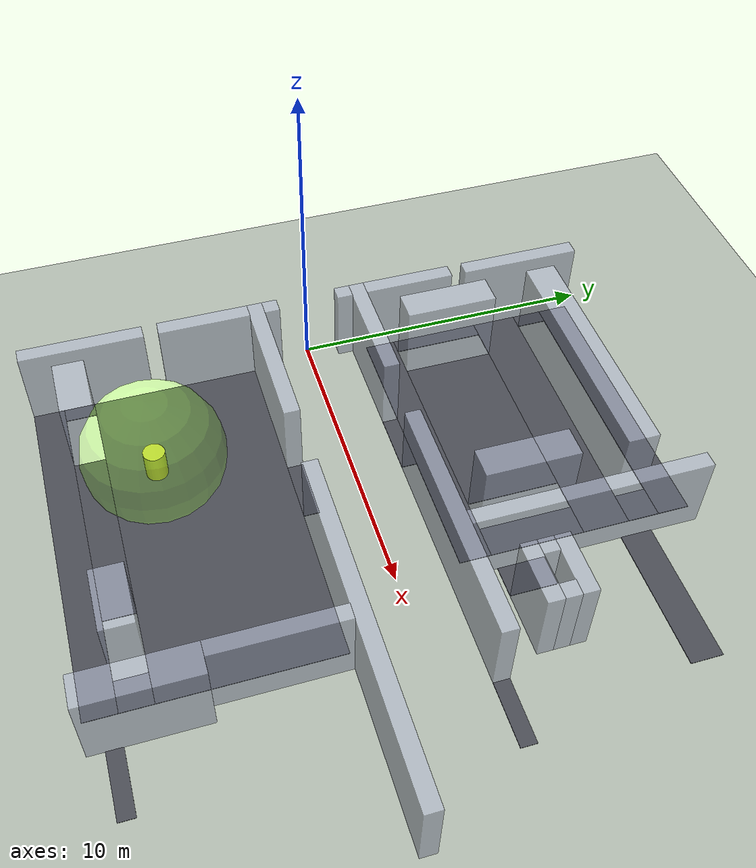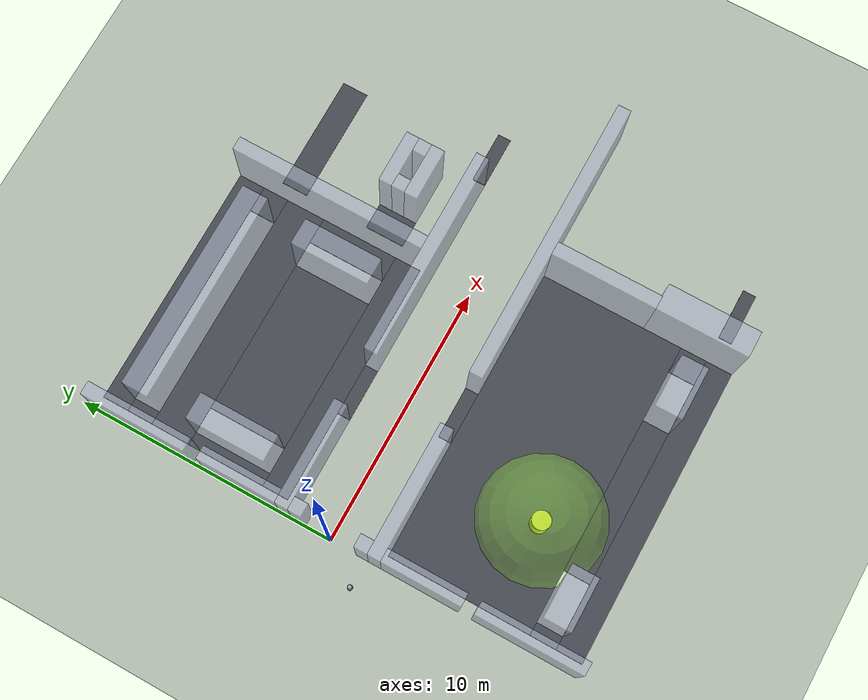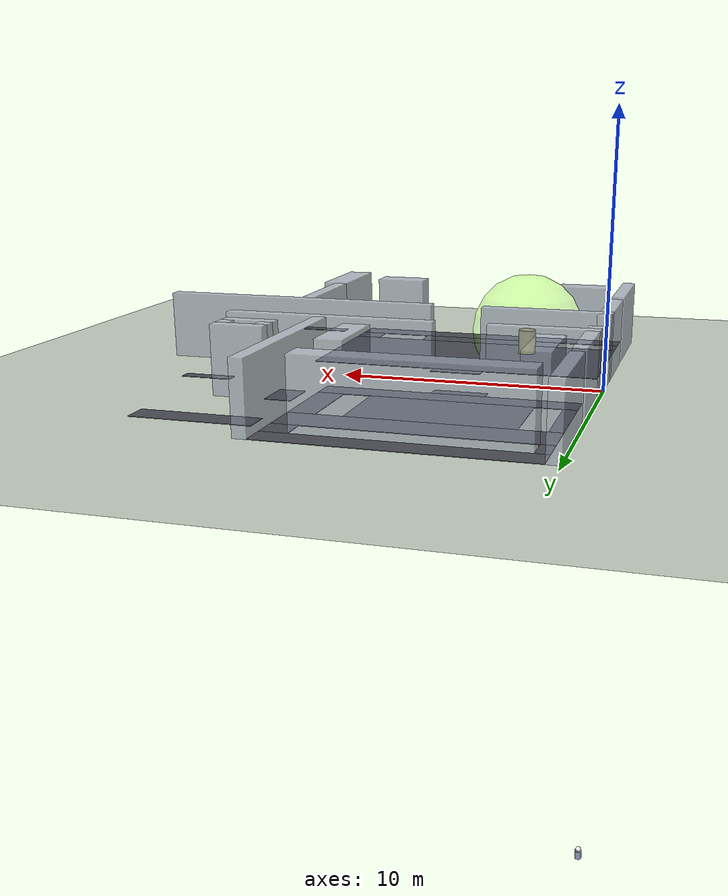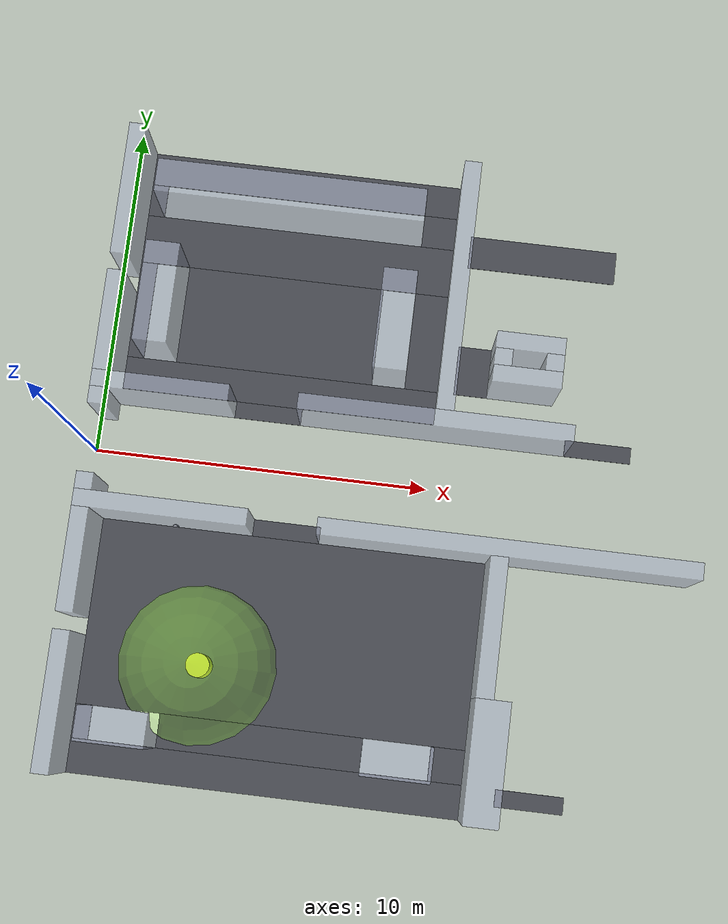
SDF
<sdf version="1.9">
 <world name="living_map_fire">
  <model name="ground">
   <static>true</static>
   <link name="l">
    <collision name="c"><geometry><plane><normal>0 0 1</normal><size>120 80</size></plane></geometry></collision>
    <visual name="v">
     <geometry><plane><normal>0 0 1</normal><size>120 80</size></plane></geometry>
     <material><ambient>0.16 0.17 0.2 1.0</ambient><diffuse>0.16 0.17 0.2 1.0</diffuse></material>
    </visual>
   </link>
  </model>
  <model name="slab0_0">
   <static>true</static>
   <pose>6.250 -9.000 0.010 0 0 0</pose>
   <link name="l">
    <collision name="c"><geometry><box><size>11.500 1.000 0.020</size></box></geometry></collision>
    <visual name="v">
     <geometry><box><size>11.500 1.000 0.020</size></box></geometry>
     <material><ambient>0.28 0.29 0.32 1.0</ambient><diffuse>0.28 0.29 0.32 1.0</diffuse></material>
    </visual>
   </link>
  </model>
  <model name="slab0_4">
   <static>true</static>
   <pose>14.000 -8.750 0.010 0 0 0</pose>
   <link name="l">
    <collision name="c"><geometry><box><size>2.000 0.500 0.020</size></box></geometry></collision>
    <visual name="v">
     <geometry><box><size>2.000 0.500 0.020</size></box></geometry>
     <material><ambient>0.28 0.29 0.32 1.0</ambient><diffuse>0.28 0.29 0.32 1.0</diffuse></material>
    </visual>
   </link>
  </model>
  <model name="slab0_9">
   <static>true</static>
   <pose>0.750 -8.000 0.010 0 0 0</pose>
   <link name="l">
    <collision name="c"><geometry><box><size>0.500 1.000 0.020</size></box></geometry></collision>
    <visual name="v">
     <geometry><box><size>0.500 1.000 0.020</size></box></geometry>
     <material><ambient>0.28 0.29 0.32 1.0</ambient><diffuse>0.28 0.29 0.32 1.0</diffuse></material>
    </visual>
   </link>
  </model>
  <model name="slab0_10">
   <static>true</static>
   <pose>6.000 -8.000 0.010 0 0 0</pose>
   <link name="l">
    <collision name="c"><geometry><box><size>6.000 1.000 0.020</size></box></geometry></collision>
    <visual name="v">
     <geometry><box><size>6.000 1.000 0.020</size></box></geometry>
     <material><ambient>0.28 0.29 0.32 1.0</ambient><diffuse>0.28 0.29 0.32 1.0</diffuse></material>
    </visual>
   </link>
  </model>
  <model name="slab0_11">
   <static>true</static>
   <pose>11.500 -8.000 0.010 0 0 0</pose>
   <link name="l">
    <collision name="c"><geometry><box><size>1.000 1.000 0.020</size></box></geometry></collision>
    <visual name="v">
     <geometry><box><size>1.000 1.000 0.020</size></box></geometry>
     <material><ambient>0.28 0.29 0.32 1.0</ambient><diffuse>0.28 0.29 0.32 1.0</diffuse></material>
    </visual>
   </link>
  </model>
  <model name="slab0_13">
   <static>true</static>
   <pose>6.250 -4.750 0.010 0 0 0</pose>
   <link name="l">
    <collision name="c"><geometry><box><size>11.500 5.500 0.020</size></box></geometry></collision>
    <visual name="v">
     <geometry><box><size>11.500 5.500 0.020</size></box></geometry>
     <material><ambient>0.28 0.29 0.32 1.0</ambient><diffuse>0.28 0.29 0.32 1.0</diffuse></material>
    </visual>
   </link>
  </model>
  <model name="slab0_16">
   <static>true</static>
   <pose>6.000 -1.750 0.010 0 0 0</pose>
   <link name="l">
    <collision name="c"><geometry><box><size>2.000 0.500 0.020</size></box></geometry></collision>
    <visual name="v">
     <geometry><box><size>2.000 0.500 0.020</size></box></geometry>
     <material><ambient>0.28 0.29 0.32 1.0</ambient><diffuse>0.28 0.29 0.32 1.0</diffuse></material>
    </visual>
   </link>
  </model>
  <model name="slab0_24">
   <static>true</static>
   <pose>5.000 1.750 0.010 0 0 0</pose>
   <link name="l">
    <collision name="c"><geometry><box><size>2.000 0.500 0.020</size></box></geometry></collision>
    <visual name="v">
     <geometry><box><size>2.000 0.500 0.020</size></box></geometry>
     <material><ambient>0.28 0.29 0.32 1.0</ambient><diffuse>0.28 0.29 0.32 1.0</diffuse></material>
    </visual>
   </link>
  </model>
  <model name="slab0_25">
   <static>true</static>
   <pose>15.000 1.750 0.010 0 0 0</pose>
   <link name="l">
    <collision name="c"><geometry><box><size>2.000 0.500 0.020</size></box></geometry></collision>
    <visual name="v">
     <geometry><box><size>2.000 0.500 0.020</size></box></geometry>
     <material><ambient>0.28 0.29 0.32 1.0</ambient><diffuse>0.28 0.29 0.32 1.0</diffuse></material>
    </visual>
   </link>
  </model>
  <model name="slab0_28">
   <static>true</static>
   <pose>5.250 2.500 0.010 0 0 0</pose>
   <link name="l">
    <collision name="c"><geometry><box><size>9.500 1.000 0.020</size></box></geometry></collision>
    <visual name="v">
     <geometry><box><size>9.500 1.000 0.020</size></box></geometry>
     <material><ambient>0.28 0.29 0.32 1.0</ambient><diffuse>0.28 0.29 0.32 1.0</diffuse></material>
    </visual>
   </link>
  </model>
  <model name="slab0_32">
   <static>true</static>
   <pose>0.750 4.500 0.010 0 0 0</pose>
   <link name="l">
    <collision name="c"><geometry><box><size>0.500 3.000 0.020</size></box></geometry></collision>
    <visual name="v">
     <geometry><box><size>0.500 3.000 0.020</size></box></geometry>
     <material><ambient>0.28 0.29 0.32 1.0</ambient><diffuse>0.28 0.29 0.32 1.0</diffuse></material>
    </visual>
   </link>
  </model>
  <model name="slab0_33">
   <static>true</static>
   <pose>5.000 4.500 0.010 0 0 0</pose>
   <link name="l">
    <collision name="c"><geometry><box><size>6.000 3.000 0.020</size></box></geometry></collision>
    <visual name="v">
     <geometry><box><size>6.000 3.000 0.020</size></box></geometry>
     <material><ambient>0.28 0.29 0.32 1.0</ambient><diffuse>0.28 0.29 0.32 1.0</diffuse></material>
    </visual>
   </link>
  </model>
  <model name="slab0_34">
   <static>true</static>
   <pose>9.500 4.500 0.010 0 0 0</pose>
   <link name="l">
    <collision name="c"><geometry><box><size>1.000 3.000 0.020</size></box></geometry></collision>
    <visual name="v">
     <geometry><box><size>1.000 3.000 0.020</size></box></geometry>
     <material><ambient>0.28 0.29 0.32 1.0</ambient><diffuse>0.28 0.29 0.32 1.0</diffuse></material>
    </visual>
   </link>
  </model>
  <model name="slab0_35">
   <static>true</static>
   <pose>11.000 3.750 0.010 0 0 0</pose>
   <link name="l">
    <collision name="c"><geometry><box><size>1.000 1.500 0.020</size></box></geometry></collision>
    <visual name="v">
     <geometry><box><size>1.000 1.500 0.020</size></box></geometry>
     <material><ambient>0.28 0.29 0.32 1.0</ambient><diffuse>0.28 0.29 0.32 1.0</diffuse></material>
    </visual>
   </link>
  </model>
  <model name="slab0_47">
   <static>true</static>
   <pose>5.250 6.750 0.010 0 0 0</pose>
   <link name="l">
    <collision name="c"><geometry><box><size>9.500 1.500 0.020</size></box></geometry></collision>
    <visual name="v">
     <geometry><box><size>9.500 1.500 0.020</size></box></geometry>
     <material><ambient>0.28 0.29 0.32 1.0</ambient><diffuse>0.28 0.29 0.32 1.0</diffuse></material>
    </visual>
   </link>
  </model>
  <model name="slab0_48">
   <static>true</static>
   <pose>12.750 7.500 0.010 0 0 0</pose>
   <link name="l">
    <collision name="c"><geometry><box><size>4.500 1.000 0.020</size></box></geometry></collision>
    <visual name="v">
     <geometry><box><size>4.500 1.000 0.020</size></box></geometry>
     <material><ambient>0.28 0.29 0.32 1.0</ambient><diffuse>0.28 0.29 0.32 1.0</diffuse></material>
    </visual>
   </link>
  </model>
  <model name="slab0_50">
   <static>true</static>
   <pose>0.750 8.000 0.010 0 0 0</pose>
   <link name="l">
    <collision name="c"><geometry><box><size>0.500 1.000 0.020</size></box></geometry></collision>
    <visual name="v">
     <geometry><box><size>0.500 1.000 0.020</size></box></geometry>
     <material><ambient>0.28 0.29 0.32 1.0</ambient><diffuse>0.28 0.29 0.32 1.0</diffuse></material>
    </visual>
   </link>
  </model>
  <model name="slab0_51">
   <static>true</static>
   <pose>9.500 8.000 0.010 0 0 0</pose>
   <link name="l">
    <collision name="c"><geometry><box><size>1.000 1.000 0.020</size></box></geometry></collision>
    <visual name="v">
     <geometry><box><size>1.000 1.000 0.020</size></box></geometry>
     <material><ambient>0.28 0.29 0.32 1.0</ambient><diffuse>0.28 0.29 0.32 1.0</diffuse></material>
    </visual>
   </link>
  </model>
  <model name="slab0_55">
   <static>true</static>
   <pose>5.250 9.000 0.010 0 0 0</pose>
   <link name="l">
    <collision name="c"><geometry><box><size>9.500 1.000 0.020</size></box></geometry></collision>
    <visual name="v">
     <geometry><box><size>9.500 1.000 0.020</size></box></geometry>
     <material><ambient>0.28 0.29 0.32 1.0</ambient><diffuse>0.28 0.29 0.32 1.0</diffuse></material>
    </visual>
   </link>
  </model>
  <model name="wall0_1">
   <static>true</static>
   <pose>0.250 -7.500 1.300 0 0 0</pose>
   <link name="l">
    <collision name="c"><geometry><box><size>0.500 4.000 2.600</size></box></geometry></collision>
    <visual name="v">
     <geometry><box><size>0.500 4.000 2.600</size></box></geometry>
     <material><ambient>0.62 0.65 0.72 0.75</ambient><diffuse>0.62 0.65 0.72 0.75</diffuse></material>
    </visual>
   </link>
  </model>
  <model name="wall0_2">
   <static>true</static>
   <pose>12.500 -7.750 1.300 0 0 0</pose>
   <link name="l">
    <collision name="c"><geometry><box><size>1.000 3.500 2.600</size></box></geometry></collision>
    <visual name="v">
     <geometry><box><size>1.000 3.500 2.600</size></box></geometry>
     <material><ambient>0.62 0.65 0.72 0.75</ambient><diffuse>0.62 0.65 0.72 0.75</diffuse></material>
    </visual>
   </link>
  </model>
  <model name="wall0_10">
   <static>true</static>
   <pose>2.000 -8.000 1.300 0 0 0</pose>
   <link name="l">
    <collision name="c"><geometry><box><size>2.000 1.000 2.600</size></box></geometry></collision>
    <visual name="v">
     <geometry><box><size>2.000 1.000 2.600</size></box></geometry>
     <material><ambient>0.62 0.65 0.72 0.75</ambient><diffuse>0.62 0.65 0.72 0.75</diffuse></material>
    </visual>
   </link>
  </model>
  <model name="wall0_11">
   <static>true</static>
   <pose>10.000 -8.000 1.300 0 0 0</pose>
   <link name="l">
    <collision name="c"><geometry><box><size>2.000 1.000 2.600</size></box></geometry></collision>
    <visual name="v">
     <geometry><box><size>2.000 1.000 2.600</size></box></geometry>
     <material><ambient>0.62 0.65 0.72 0.75</ambient><diffuse>0.62 0.65 0.72 0.75</diffuse></material>
    </visual>
   </link>
  </model>
  <model name="wall0_12">
   <static>true</static>
   <pose>12.250 -4.000 1.300 0 0 0</pose>
   <link name="l">
    <collision name="c"><geometry><box><size>0.500 4.000 2.600</size></box></geometry></collision>
    <visual name="v">
     <geometry><box><size>0.500 4.000 2.600</size></box></geometry>
     <material><ambient>0.62 0.65 0.72 0.75</ambient><diffuse>0.62 0.65 0.72 0.75</diffuse></material>
    </visual>
   </link>
  </model>
  <model name="wall0_15">
   <static>true</static>
   <pose>0.250 -3.500 1.300 0 0 0</pose>
   <link name="l">
    <collision name="c"><geometry><box><size>0.500 3.000 2.600</size></box></geometry></collision>
    <visual name="v">
     <geometry><box><size>0.500 3.000 2.600</size></box></geometry>
     <material><ambient>0.62 0.65 0.72 0.75</ambient><diffuse>0.62 0.65 0.72 0.75</diffuse></material>
    </visual>
   </link>
  </model>
  <model name="wall0_16">
   <static>true</static>
   <pose>2.500 -1.750 1.300 0 0 0</pose>
   <link name="l">
    <collision name="c"><geometry><box><size>5.000 0.500 2.600</size></box></geometry></collision>
    <visual name="v">
     <geometry><box><size>5.000 0.500 2.600</size></box></geometry>
     <material><ambient>0.62 0.65 0.72 0.75</ambient><diffuse>0.62 0.65 0.72 0.75</diffuse></material>
    </visual>
   </link>
  </model>
  <model name="wall0_17">
   <static>true</static>
   <pose>12.500 -1.750 1.300 0 0 0</pose>
   <link name="l">
    <collision name="c"><geometry><box><size>11.000 0.500 2.600</size></box></geometry></collision>
    <visual name="v">
     <geometry><box><size>11.000 0.500 2.600</size></box></geometry>
     <material><ambient>0.62 0.65 0.72 0.75</ambient><diffuse>0.62 0.65 0.72 0.75</diffuse></material>
    </visual>
   </link>
  </model>
  <model name="wall0_21">
   <static>true</static>
   <pose>0.250 -1.250 1.300 0 0 0</pose>
   <link name="l">
    <collision name="c"><geometry><box><size>0.500 0.500 2.600</size></box></geometry></collision>
    <visual name="v">
     <geometry><box><size>0.500 0.500 2.600</size></box></geometry>
     <material><ambient>0.62 0.65 0.72 0.75</ambient><diffuse>0.62 0.65 0.72 0.75</diffuse></material>
    </visual>
   </link>
  </model>
  <model name="wall0_23">
   <static>true</static>
   <pose>0.250 1.250 1.300 0 0 0</pose>
   <link name="l">
    <collision name="c"><geometry><box><size>0.500 0.500 2.600</size></box></geometry></collision>
    <visual name="v">
     <geometry><box><size>0.500 0.500 2.600</size></box></geometry>
     <material><ambient>0.62 0.65 0.72 0.75</ambient><diffuse>0.62 0.65 0.72 0.75</diffuse></material>
    </visual>
   </link>
  </model>
  <model name="wall0_24">
   <static>true</static>
   <pose>2.000 1.750 1.300 0 0 0</pose>
   <link name="l">
    <collision name="c"><geometry><box><size>4.000 0.500 2.600</size></box></geometry></collision>
    <visual name="v">
     <geometry><box><size>4.000 0.500 2.600</size></box></geometry>
     <material><ambient>0.62 0.65 0.72 0.75</ambient><diffuse>0.62 0.65 0.72 0.75</diffuse></material>
    </visual>
   </link>
  </model>
  <model name="wall0_25">
   <static>true</static>
   <pose>10.000 1.750 1.300 0 0 0</pose>
   <link name="l">
    <collision name="c"><geometry><box><size>8.000 0.500 2.600</size></box></geometry></collision>
    <visual name="v">
     <geometry><box><size>8.000 0.500 2.600</size></box></geometry>
     <material><ambient>0.62 0.65 0.72 0.75</ambient><diffuse>0.62 0.65 0.72 0.75</diffuse></material>
    </visual>
   </link>
  </model>
  <model name="wall0_29">
   <static>true</static>
   <pose>0.250 3.500 1.300 0 0 0</pose>
   <link name="l">
    <collision name="c"><geometry><box><size>0.500 3.000 2.600</size></box></geometry></collision>
    <visual name="v">
     <geometry><box><size>0.500 3.000 2.600</size></box></geometry>
     <material><ambient>0.62 0.65 0.72 0.75</ambient><diffuse>0.62 0.65 0.72 0.75</diffuse></material>
    </visual>
   </link>
  </model>
  <model name="wall0_30">
   <static>true</static>
   <pose>10.250 5.750 1.300 0 0 0</pose>
   <link name="l">
    <collision name="c"><geometry><box><size>0.500 7.500 2.600</size></box></geometry></collision>
    <visual name="v">
     <geometry><box><size>0.500 7.500 2.600</size></box></geometry>
     <material><ambient>0.62 0.65 0.72 0.75</ambient><diffuse>0.62 0.65 0.72 0.75</diffuse></material>
    </visual>
   </link>
  </model>
  <model name="wall0_34">
   <static>true</static>
   <pose>1.500 4.500 1.300 0 0 0</pose>
   <link name="l">
    <collision name="c"><geometry><box><size>1.000 3.000 2.600</size></box></geometry></collision>
    <visual name="v">
     <geometry><box><size>1.000 3.000 2.600</size></box></geometry>
     <material><ambient>0.62 0.65 0.72 0.75</ambient><diffuse>0.62 0.65 0.72 0.75</diffuse></material>
    </visual>
   </link>
  </model>
  <model name="wall0_35">
   <static>true</static>
   <pose>8.500 4.500 1.300 0 0 0</pose>
   <link name="l">
    <collision name="c"><geometry><box><size>1.000 3.000 2.600</size></box></geometry></collision>
    <visual name="v">
     <geometry><box><size>1.000 3.000 2.600</size></box></geometry>
     <material><ambient>0.62 0.65 0.72 0.75</ambient><diffuse>0.62 0.65 0.72 0.75</diffuse></material>
    </visual>
   </link>
  </model>
  <model name="wall0_36">
   <static>true</static>
   <pose>12.500 3.250 1.300 0 0 0</pose>
   <link name="l">
    <collision name="c"><geometry><box><size>2.000 0.500 2.600</size></box></geometry></collision>
    <visual name="v">
     <geometry><box><size>2.000 0.500 2.600</size></box></geometry>
     <material><ambient>0.62 0.65 0.72 0.75</ambient><diffuse>0.62 0.65 0.72 0.75</diffuse></material>
    </visual>
   </link>
  </model>
  <model name="wall0_41">
   <static>true</static>
   <pose>11.750 3.750 1.300 0 0 0</pose>
   <link name="l">
    <collision name="c"><geometry><box><size>0.500 0.500 2.600</size></box></geometry></collision>
    <visual name="v">
     <geometry><box><size>0.500 0.500 2.600</size></box></geometry>
     <material><ambient>0.62 0.65 0.72 0.75</ambient><diffuse>0.62 0.65 0.72 0.75</diffuse></material>
    </visual>
   </link>
  </model>
  <model name="wall0_42">
   <static>true</static>
   <pose>13.250 3.750 1.300 0 0 0</pose>
   <link name="l">
    <collision name="c"><geometry><box><size>0.500 0.500 2.600</size></box></geometry></collision>
    <visual name="v">
     <geometry><box><size>0.500 0.500 2.600</size></box></geometry>
     <material><ambient>0.62 0.65 0.72 0.75</ambient><diffuse>0.62 0.65 0.72 0.75</diffuse></material>
    </visual>
   </link>
  </model>
  <model name="wall0_49">
   <static>true</static>
   <pose>12.500 4.250 1.300 0 0 0</pose>
   <link name="l">
    <collision name="c"><geometry><box><size>2.000 0.500 2.600</size></box></geometry></collision>
    <visual name="v">
     <geometry><box><size>2.000 0.500 2.600</size></box></geometry>
     <material><ambient>0.62 0.65 0.72 0.75</ambient><diffuse>0.62 0.65 0.72 0.75</diffuse></material>
    </visual>
   </link>
  </model>
  <model name="wall0_54">
   <static>true</static>
   <pose>0.250 7.500 1.300 0 0 0</pose>
   <link name="l">
    <collision name="c"><geometry><box><size>0.500 4.000 2.600</size></box></geometry></collision>
    <visual name="v">
     <geometry><box><size>0.500 4.000 2.600</size></box></geometry>
     <material><ambient>0.62 0.65 0.72 0.75</ambient><diffuse>0.62 0.65 0.72 0.75</diffuse></material>
    </visual>
   </link>
  </model>
  <model name="wall0_56">
   <static>true</static>
   <pose>5.000 8.000 1.300 0 0 0</pose>
   <link name="l">
    <collision name="c"><geometry><box><size>8.000 1.000 2.600</size></box></geometry></collision>
    <visual name="v">
     <geometry><box><size>8.000 1.000 2.600</size></box></geometry>
     <material><ambient>0.62 0.65 0.72 0.75</ambient><diffuse>0.62 0.65 0.72 0.75</diffuse></material>
    </visual>
   </link>
  </model>
  <model name="gas_tank_0">
   <static>true</static>
   <pose>4.000 -6.000 0.500 0 0 0</pose>
   <link name="l">
    <visual name="v">
     <geometry><cylinder><radius>0.35</radius><length>1.0</length></cylinder></geometry>
     <material><ambient>0.85 0.85 0.2 1.0</ambient><diffuse>0.85 0.85 0.2 1.0</diffuse></material>
    </visual>
   </link>
  </model>
  <model name="gas_cloud_0">
   <static>true</static>
   <pose>4.000 -6.000 1.000 0 0 0</pose>
   <link name="l">
    <visual name="v">
     <geometry><sphere><radius>2.3</radius></sphere></geometry>
     <material>
      <ambient>0.6 1 0.2 0.35</ambient>
      <diffuse>0.6 1 0.2 0.35</diffuse>
      <emissive>0.2 0.4 0.05 1</emissive>
     </material>
     <transparency>0.65</transparency>
    </visual>
   </link>
  </model>
  <model name="bcn_p3_5">
   <static>false</static>
   <pose>0 0 -20 0 0 0</pose>
   <link name="l">
    <gravity>false</gravity>
    <inertial><mass>1</mass><inertia><ixx>0.1</ixx><iyy>0.1</iyy><izz>0.1</izz></inertia></inertial>
    <visual name="b">
     <geometry><cylinder><radius>0.14</radius><length>0.36</length></cylinder></geometry>
     <material>
      <ambient>0.6 0.66 0.78 1.0</ambient>
      <diffuse>0.6 0.66 0.78 1.0</diffuse>
      <emissive>0.6 0.66 0.78 1</emissive>
     </material>
    </visual>
    <visual name="t">
     <pose>0 0 0.24 0 0 0</pose>
     <geometry><sphere><radius>0.11</radius></sphere></geometry>
     <material><ambient>1 1 1 1.0</ambient><diffuse>1 1 1 1.0</diffuse><emissive>1 1 1 1</emissive></material>
    </visual>
   </link>
  </model>
  <model name="bcn_p3_6">
   <static>false</static>
   <pose>0 0 -20 0 0 0</pose>
   <link name="l">
    <gravity>false</gravity>
    <inertial><mass>1</mass><inertia><ixx>0.1</ixx><iyy>0.1</iyy><izz>0.1</izz></inertia></inertial>
    <visual name="b">
     <geometry><cylinder><radius>0.14</radius><length>0.36</length></cylinder></geometry>
     <material>
      <ambient>0.6 0.66 0.78 1.0</ambient>
      <diffuse>0.6 0.66 0.78 1.0</diffuse>
      <emissive>0.6 0.66 0.78 1</emissive>
     </material>
    </visual>
    <visual name="t">
     <pose>0 0 0.24 0 0 0</pose>
     <geometry><sphere><radius>0.11</radius></sphere></geometry>
     <material><ambient>1 1 1 1.0</ambient><diffuse>1 1 1 1.0</diffuse><emissive>1 1 1 1</emissive></material>
    </visual>
   </link>
  </model>
  <model name="bcn_p3_7">
   <static>false</static>
   <pose>0 0 -20 0 0 0</pose>
   <link name="l">
    <gravity>false</gravity>
    <inertial><mass>1</mass><inertia><ixx>0.1</ixx><iyy>0.1</iyy><izz>0.1</izz></inertia></inertial>
    <visual name="b">
     <geometry><cylinder><radius>0.14</radius><length>0.36</length></cylinder></geometry>
     <material>
      <ambient>0.6 0.66 0.78 1.0</ambient>
      <diffuse>0.6 0.66 0.78 1.0</diffuse>
      <emissive>0.6 0.66 0.78 1</emissive>
     </material>
    </visual>
    <visual name="t">
     <pose>0 0 0.24 0 0 0</pose>
     <geometry><sphere><radius>0.11</radius></sphere></geometry>
     <material><ambient>1 1 1 1.0</ambient><diffuse>1 1 1 1.0</diffuse><emissive>1 1 1 1</emissive></material>
    </visual>
   </link>
  </model>
  <model name="bcn_p3_8">
   <static>false</static>
   <pose>0 0 -20 0 0 0</pose>
   <link name="l">
    <gravity>false</gravity>
    <inertial><mass>1</mass><inertia><ixx>0.1</ixx><iyy>0.1</iyy><izz>0.1</izz></inertia></inertial>
    <visual name="b">
     <geometry><cylinder><radius>0.14</radius><length>0.36</length></cylinder></geometry>
     <material>
      <ambient>0.6 0.66 0.78 1.0</ambient>
      <diffuse>0.6 0.66 0.78 1.0</diffuse>
      <emissive>0.6 0.66 0.78 1</emissive>
     </material>
    </visual>
    <visual name="t">
     <pose>0 0 0.24 0 0 0</pose>
     <geometry><sphere><radius>0.11</radius></sphere></geometry>
     <material><ambient>1 1 1 1.0</ambient><diffuse>1 1 1 1.0</diffuse><emissive>1 1 1 1</emissive></material>
    </visual>
   </link>
  </model>
  <model name="bcn_p3_9">
   <static>false</static>
   <pose>0 0 -20 0 0 0</pose>
   <link name="l">
    <gravity>false</gravity>
    <inertial><mass>1</mass><inertia><ixx>0.1</ixx><iyy>0.1</iyy><izz>0.1</izz></inertia></inertial>
    <visual name="b">
     <geometry><cylinder><radius>0.14</radius><length>0.36</length></cylinder></geometry>
     <material>
      <ambient>0.6 0.66 0.78 1.0</ambient>
      <diffuse>0.6 0.66 0.78 1.0</diffuse>
      <emissive>0.6 0.66 0.78 1</emissive>
     </material>
    </visual>
    <visual name="t">
     <pose>0 0 0.24 0 0 0</pose>
     <geometry><sphere><radius>0.11</radius></sphere></geometry>
     <material><ambient>1 1 1 1.0</ambient><diffuse>1 1 1 1.0</diffuse><emissive>1 1 1 1</emissive></material>
    </visual>
   </link>
  </model>
  <model name="bcn_p3_10">
   <static>false</static>
   <pose>0 0 -20 0 0 0</pose>
   <link name="l">
    <gravity>false</gravity>
    <inertial><mass>1</mass><inertia><ixx>0.1</ixx><iyy>0.1</iyy><izz>0.1</izz></inertia></inertial>
    <visual name="b">
     <geometry><cylinder><radius>0.14</radius><length>0.36</length></cylinder></geometry>
     <material>
      <ambient>0.6 0.66 0.78 1.0</ambient>
      <diffuse>0.6 0.66 0.78 1.0</diffuse>
      <emissive>0.6 0.66 0.78 1</emissive>
     </material>
    </visual>
    <visual name="t">
     <pose>0 0 0.24 0 0 0</pose>
     <geometry><sphere><radius>0.11</radius></sphere></geometry>
     <material><ambient>1 1 1 1.0</ambient><diffuse>1 1 1 1.0</diffuse><emissive>1 1 1 1</emissive></material>
    </visual>
   </link>
  </model>
  <model name="bcn_p3_11">
   <static>false</static>
   <pose>0 0 -20 0 0 0</pose>
   <link name="l">
    <gravity>false</gravity>
    <inertial><mass>1</mass><inertia><ixx>0.1</ixx><iyy>0.1</iyy><izz>0.1</izz></inertia></inertial>
    <visual name="b">
     <geometry><cylinder><radius>0.14</radius><length>0.36</length></cylinder></geometry>
     <material>
      <ambient>0.6 0.66 0.78 1.0</ambient>
      <diffuse>0.6 0.66 0.78 1.0</diffuse>
      <emissive>0.6 0.66 0.78 1</emissive>
     </material>
    </visual>
    <visual name="t">
     <pose>0 0 0.24 0 0 0</pose>
     <geometry><sphere><radius>0.11</radius></sphere></geometry>
     <material><ambient>1 1 1 1.0</ambient><diffuse>1 1 1 1.0</diffuse><emissive>1 1 1 1</emissive></material>
    </visual>
   </link>
  </model>
  <model name="bcn_p3_12">
   <static>false</static>
   <pose>0 0 -20 0 0 0</pose>
   <link name="l">
    <gravity>false</gravity>
    <inertial><mass>1</mass><inertia><ixx>0.1</ixx><iyy>0.1</iyy><izz>0.1</izz></inertia></inertial>
    <visual name="b">
     <geometry><cylinder><radius>0.14</radius><length>0.36</length></cylinder></geometry>
     <material>
      <ambient>0.6 0.66 0.78 1.0</ambient>
      <diffuse>0.6 0.66 0.78 1.0</diffuse>
      <emissive>0.6 0.66 0.78 1</emissive>
     </material>
    </visual>
    <visual name="t">
     <pose>0 0 0.24 0 0 0</pose>
     <geometry><sphere><radius>0.11</radius></sphere></geometry>
     <material><ambient>1 1 1 1.0</ambient><diffuse>1 1 1 1.0</diffuse><emissive>1 1 1 1</emissive></material>
    </visual>
   </link>
  </model>
  <model name="bcn_p3_13">
   <static>false</static>
   <pose>0 0 -20 0 0 0</pose>
   <link name="l">
    <gravity>false</gravity>
    <inertial><mass>1</mass><inertia><ixx>0.1</ixx><iyy>0.1</iyy><izz>0.1</izz></inertia></inertial>
    <visual name="b">
     <geometry><cylinder><radius>0.14</radius><length>0.36</length></cylinder></geometry>
     <material>
      <ambient>0.6 0.66 0.78 1.0</ambient>
      <diffuse>0.6 0.66 0.78 1.0</diffuse>
      <emissive>0.6 0.66 0.78 1</emissive>
     </material>
    </visual>
    <visual name="t">
     <pose>0 0 0.24 0 0 0</pose>
     <geometry><sphere><radius>0.11</radius></sphere></geometry>
     <material><ambient>1 1 1 1.0</ambient><diffuse>1 1 1 1.0</diffuse><emissive>1 1 1 1</emissive></material>
    </visual>
   </link>
  </model>
  <model name="bcn_p3_14">
   <static>false</static>
   <pose>0 0 -20 0 0 0</pose>
   <link name="l">
    <gravity>false</gravity>
    <inertial><mass>1</mass><inertia><ixx>0.1</ixx><iyy>0.1</iyy><izz>0.1</izz></inertia></inertial>
    <visual name="b">
     <geometry><cylinder><radius>0.14</radius><length>0.36</length></cylinder></geometry>
     <material>
      <ambient>0.6 0.66 0.78 1.0</ambient>
      <diffuse>0.6 0.66 0.78 1.0</diffuse>
      <emissive>0.6 0.66 0.78 1</emissive>
     </material>
    </visual>
    <visual name="t">
     <pose>0 0 0.24 0 0 0</pose>
     <geometry><sphere><radius>0.11</radius></sphere></geometry>
     <material><ambient>1 1 1 1.0</ambient><diffuse>1 1 1 1.0</diffuse><emissive>1 1 1 1</emissive></material>
    </visual>
   </link>
  </model>
  <model name="bcn_p3_15">
   <static>false</static>
   <pose>0 0 -20 0 0 0</pose>
   <link name="l">
    <gravity>false</gravity>
    <inertial><mass>1</mass><inertia><ixx>0.1</ixx><iyy>0.1</iyy><izz>0.1</izz></inertia></inertial>
    <visual name="b">
     <geometry><cylinder><radius>0.14</radius><length>0.36</length></cylinder></geometry>
     <material>
      <ambient>0.6 0.66 0.78 1.0</ambient>
      <diffuse>0.6 0.66 0.78 1.0</diffuse>
      <emissive>0.6 0.66 0.78 1</emissive>
     </material>
    </visual>
    <visual name="t">
     <pose>0 0 0.24 0 0 0</pose>
     <geometry><sphere><radius>0.11</radius></sphere></geometry>
     <material><ambient>1 1 1 1.0</ambient><diffuse>1 1 1 1.0</diffuse><emissive>1 1 1 1</emissive></material>
    </visual>
   </link>
  </model>
  <model name="bcn_p3_16">
   <static>false</static>
   <pose>0 0 -20 0 0 0</pose>
   <link name="l">
    <gravity>false</gravity>
    <inertial><mass>1</mass><inertia><ixx>0.1</ixx><iyy>0.1</iyy><izz>0.1</izz></inertia></inertial>
    <visual name="b">
     <geometry><cylinder><radius>0.14</radius><length>0.36</length></cylinder></geometry>
     <material>
      <ambient>0.6 0.66 0.78 1.0</ambient>
      <diffuse>0.6 0.66 0.78 1.0</diffuse>
      <emissive>0.6 0.66 0.78 1</emissive>
     </material>
    </visual>
    <visual name="t">
     <pose>0 0 0.24 0 0 0</pose>
     <geometry><sphere><radius>0.11</radius></sphere></geometry>
     <material><ambient>1 1 1 1.0</ambient><diffuse>1 1 1 1.0</diffuse><emissive>1 1 1 1</emissive></material>
    </visual>
   </link>
  </model>
  <model name="bcn_p3_17">
   <static>false</static>
   <pose>0 0 -20 0 0 0</pose>
   <link name="l">
    <gravity>false</gravity>
    <inertial><mass>1</mass><inertia><ixx>0.1</ixx><iyy>0.1</iyy><izz>0.1</izz></inertia></inertial>
    <visual name="b">
     <geometry><cylinder><radius>0.14</radius><length>0.36</length></cylinder></geometry>
     <material>
      <ambient>0.6 0.66 0.78 1.0</ambient>
      <diffuse>0.6 0.66 0.78 1.0</diffuse>
      <emissive>0.6 0.66 0.78 1</emissive>
     </material>
    </visual>
    <visual name="t">
     <pose>0 0 0.24 0 0 0</pose>
     <geometry><sphere><radius>0.11</radius></sphere></geometry>
     <material><ambient>1 1 1 1.0</ambient><diffuse>1 1 1 1.0</diffuse><emissive>1 1 1 1</emissive></material>
    </visual>
   </link>
  </model>
  <model name="bcn_p3_18">
   <static>false</static>
   <pose>0 0 -20 0 0 0</pose>
   <link name="l">
    <gravity>false</gravity>
    <inertial><mass>1</mass><inertia><ixx>0.1</ixx><iyy>0.1</iyy><izz>0.1</izz></inertia></inertial>
    <visual name="b">
     <geometry><cylinder><radius>0.14</radius><length>0.36</length></cylinder></geometry>
     <material>
      <ambient>0.6 0.66 0.78 1.0</ambient>
      <diffuse>0.6 0.66 0.78 1.0</diffuse>
      <emissive>0.6 0.66 0.78 1</emissive>
     </material>
    </visual>
    <visual name="t">
     <pose>0 0 0.24 0 0 0</pose>
     <geometry><sphere><radius>0.11</radius></sphere></geometry>
     <material><ambient>1 1 1 1.0</ambient><diffuse>1 1 1 1.0</diffuse><emissive>1 1 1 1</emissive></material>
    </visual>
   </link>
  </model>
  <model name="bcn_p3_19">
   <static>false</static>
   <pose>0 0 -20 0 0 0</pose>
   <link name="l">
    <gravity>false</gravity>
    <inertial><mass>1</mass><inertia><ixx>0.1</ixx><iyy>0.1</iyy><izz>0.1</izz></inertia></inertial>
    <visual name="b">
     <geometry><cylinder><radius>0.14</radius><length>0.36</length></cylinder></geometry>
     <material>
      <ambient>0.6 0.66 0.78 1.0</ambient>
      <diffuse>0.6 0.66 0.78 1.0</diffuse>
      <emissive>0.6 0.66 0.78 1</emissive>
     </material>
    </visual>
    <visual name="t">
     <pose>0 0 0.24 0 0 0</pose>
     <geometry><sphere><radius>0.11</radius></sphere></geometry>
     <material><ambient>1 1 1 1.0</ambient><diffuse>1 1 1 1.0</diffuse><emissive>1 1 1 1</emissive></material>
    </visual>
   </link>
  </model>
  <model name="bcn_p3_20">
   <static>false</static>
   <pose>0 0 -20 0 0 0</pose>
   <link name="l">
    <gravity>false</gravity>
    <inertial><mass>1</mass><inertia><ixx>0.1</ixx><iyy>0.1</iyy><izz>0.1</izz></inertia></inertial>
    <visual name="b">
     <geometry><cylinder><radius>0.14</radius><length>0.36</length></cylinder></geometry>
     <material>
      <ambient>0.6 0.66 0.78 1.0</ambient>
      <diffuse>0.6 0.66 0.78 1.0</diffuse>
      <emissive>0.6 0.66 0.78 1</emissive>
     </material>
    </visual>
    <visual name="t">
     <pose>0 0 0.24 0 0 0</pose>
     <geometry><sphere><radius>0.11</radius></sphere></geometry>
     <material><ambient>1 1 1 1.0</ambient><diffuse>1 1 1 1.0</diffuse><emissive>1 1 1 1</emissive></material>
    </visual>
   </link>
  </model>
  <model name="bcn_p3_21">
   <static>false</static>
   <pose>0 0 -20 0 0 0</pose>
   <link name="l">
    <gravity>false</gravity>
    <inertial><mass>1</mass><inertia><ixx>0.1</ixx><iyy>0.1</iyy><izz>0.1</izz></inertia></inertial>
    <visual name="b">
     <geometry><cylinder><radius>0.14</radius><length>0.36</length></cylinder></geometry>
     <material>
      <ambient>0.6 0.66 0.78 1.0</ambient>
      <diffuse>0.6 0.66 0.78 1.0</diffuse>
      <emissive>0.6 0.66 0.78 1</emissive>
     </material>
    </visual>
    <visual name="t">
     <pose>0 0 0.24 0 0 0</pose>
     <geometry><sphere><radius>0.11</radius></sphere></geometry>
     <material><ambient>1 1 1 1.0</ambient><diffuse>1 1 1 1.0</diffuse><emissive>1 1 1 1</emissive></material>
    </visual>
   </link>
  </model>
  <model name="bcn_p3_22">
   <static>false</static>
   <pose>0 0 -20 0 0 0</pose>
   <link name="l">
    <gravity>false</gravity>
    <inertial><mass>1</mass><inertia><ixx>0.1</ixx><iyy>0.1</iyy><izz>0.1</izz></inertia></inertial>
    <visual name="b">
     <geometry><cylinder><radius>0.14</radius><length>0.36</length></cylinder></geometry>
     <material>
      <ambient>0.6 0.66 0.78 1.0</ambient>
      <diffuse>0.6 0.66 0.78 1.0</diffuse>
      <emissive>0.6 0.66 0.78 1</emissive>
     </material>
    </visual>
    <visual name="t">
     <pose>0 0 0.24 0 0 0</pose>
     <geometry><sphere><radius>0.11</radius></sphere></geometry>
     <material><ambient>1 1 1 1.0</ambient><diffuse>1 1 1 1.0</diffuse><emissive>1 1 1 1</emissive></material>
    </visual>
   </link>
  </model>
  <model name="bcn_p3_23">
   <static>false</static>
   <pose>0 0 -20 0 0 0</pose>
   <link name="l">
    <gravity>false</gravity>
    <inertial><mass>1</mass><inertia><ixx>0.1</ixx><iyy>0.1</iyy><izz>0.1</izz></inertia></inertial>
    <visual name="b">
     <geometry><cylinder><radius>0.14</radius><length>0.36</length></cylinder></geometry>
     <material>
      <ambient>0.6 0.66 0.78 1.0</ambient>
      <diffuse>0.6 0.66 0.78 1.0</diffuse>
      <emissive>0.6 0.66 0.78 1</emissive>
     </material>
    </visual>
    <visual name="t">
     <pose>0 0 0.24 0 0 0</pose>
     <geometry><sphere><radius>0.11</radius></sphere></geometry>
     <material><ambient>1 1 1 1.0</ambient><diffuse>1 1 1 1.0</diffuse><emissive>1 1 1 1</emissive></material>
    </visual>
   </link>
  </model>
  <model name="bcn_p3_24">
   <static>false</static>
   <pose>0 0 -20 0 0 0</pose>
   <link name="l">
    <gravity>false</gravity>
    <inertial><mass>1</mass><inertia><ixx>0.1</ixx><iyy>0.1</iyy><izz>0.1</izz></inertia></inertial>
    <visual name="b">
     <geometry><cylinder><radius>0.14</radius><length>0.36</length></cylinder></geometry>
     <material>
      <ambient>0.6 0.66 0.78 1.0</ambient>
      <diffuse>0.6 0.66 0.78 1.0</diffuse>
      <emissive>0.6 0.66 0.78 1</emissive>
     </material>
    </visual>
    <visual name="t">
     <pose>0 0 0.24 0 0 0</pose>
     <geometry><sphere><radius>0.11</radius></sphere></geometry>
     <material><ambient>1 1 1 1.0</ambient><diffuse>1 1 1 1.0</diffuse><emissive>1 1 1 1</emissive></material>
    </visual>
   </link>
  </model>
  <model name="bcn_p3_25">
   <static>false</static>
   <pose>0 0 -20 0 0 0</pose>
   <link name="l">
    <gravity>false</gravity>
    <inertial><mass>1</mass><inertia><ixx>0.1</ixx><iyy>0.1</iyy><izz>0.1</izz></inertia></inertial>
    <visual name="b">
     <geometry><cylinder><radius>0.14</radius><length>0.36</length></cylinder></geometry>
     <material>
      <ambient>0.6 0.66 0.78 1.0</ambient>
      <diffuse>0.6 0.66 0.78 1.0</diffuse>
      <emissive>0.6 0.66 0.78 1</emissive>
     </material>
    </visual>
    <visual name="t">
     <pose>0 0 0.24 0 0 0</pose>
     <geometry><sphere><radius>0.11</radius></sphere></geometry>
     <material><ambient>1 1 1 1.0</ambient><diffuse>1 1 1 1.0</diffuse><emissive>1 1 1 1</emissive></material>
    </visual>
   </link>
  </model>
  <model name="bcn_p3_26">
   <static>false</static>
   <pose>0 0 -20 0 0 0</pose>
   <link name="l">
    <gravity>false</gravity>
    <inertial><mass>1</mass><inertia><ixx>0.1</ixx><iyy>0.1</iyy><izz>0.1</izz></inertia></inertial>
    <visual name="b">
     <geometry><cylinder><radius>0.14</radius><length>0.36</length></cylinder></geometry>
     <material>
      <ambient>0.6 0.66 0.78 1.0</ambient>
      <diffuse>0.6 0.66 0.78 1.0</diffuse>
      <emissive>0.6 0.66 0.78 1</emissive>
     </material>
    </visual>
    <visual name="t">
     <pose>0 0 0.24 0 0 0</pose>
     <geometry><sphere><radius>0.11</radius></sphere></geometry>
     <material><ambient>1 1 1 1.0</ambient><diffuse>1 1 1 1.0</diffuse><emissive>1 1 1 1</emissive></material>
    </visual>
   </link>
  </model>
  <model name="bcn_p3_27">
   <static>false</static>
   <pose>0 0 -20 0 0 0</pose>
   <link name="l">
    <gravity>false</gravity>
    <inertial><mass>1</mass><inertia><ixx>0.1</ixx><iyy>0.1</iyy><izz>0.1</izz></inertia></inertial>
    <visual name="b">
     <geometry><cylinder><radius>0.14</radius><length>0.36</length></cylinder></geometry>
     <material>
      <ambient>0.6 0.66 0.78 1.0</ambient>
      <diffuse>0.6 0.66 0.78 1.0</diffuse>
      <emissive>0.6 0.66 0.78 1</emissive>
     </material>
    </visual>
    <visual name="t">
     <pose>0 0 0.24 0 0 0</pose>
     <geometry><sphere><radius>0.11</radius></sphere></geometry>
     <material><ambient>1 1 1 1.0</ambient><diffuse>1 1 1 1.0</diffuse><emissive>1 1 1 1</emissive></material>
    </visual>
   </link>
  </model>
  <model name="bcn_p3_28">
   <static>false</static>
   <pose>0 0 -20 0 0 0</pose>
   <link name="l">
    <gravity>false</gravity>
    <inertial><mass>1</mass><inertia><ixx>0.1</ixx><iyy>0.1</iyy><izz>0.1</izz></inertia></inertial>
    <visual name="b">
     <geometry><cylinder><radius>0.14</radius><length>0.36</length></cylinder></geometry>
     <material>
      <ambient>0.6 0.66 0.78 1.0</ambient>
      <diffuse>0.6 0.66 0.78 1.0</diffuse>
      <emissive>0.6 0.66 0.78 1</emissive>
     </material>
    </visual>
    <visual name="t">
     <pose>0 0 0.24 0 0 0</pose>
     <geometry><sphere><radius>0.11</radius></sphere></geometry>
     <material><ambient>1 1 1 1.0</ambient><diffuse>1 1 1 1.0</diffuse><emissive>1 1 1 1</emissive></material>
    </visual>
   </link>
  </model>
  <model name="bcn_p3_29">
   <static>false</static>
   <pose>0 0 -20 0 0 0</pose>
   <link name="l">
    <gravity>false</gravity>
    <inertial><mass>1</mass><inertia><ixx>0.1</ixx><iyy>0.1</iyy><izz>0.1</izz></inertia></inertial>
    <visual name="b">
     <geometry><cylinder><radius>0.14</radius><length>0.36</length></cylinder></geometry>
     <material>
      <ambient>0.6 0.66 0.78 1.0</ambient>
      <diffuse>0.6 0.66 0.78 1.0</diffuse>
      <emissive>0.6 0.66 0.78 1</emissive>
     </material>
    </visual>
    <visual name="t">
     <pose>0 0 0.24 0 0 0</pose>
     <geometry><sphere><radius>0.11</radius></sphere></geometry>
     <material><ambient>1 1 1 1.0</ambient><diffuse>1 1 1 1.0</diffuse><emissive>1 1 1 1</emissive></material>
    </visual>
   </link>
  </model>
 </world>
</sdf>
